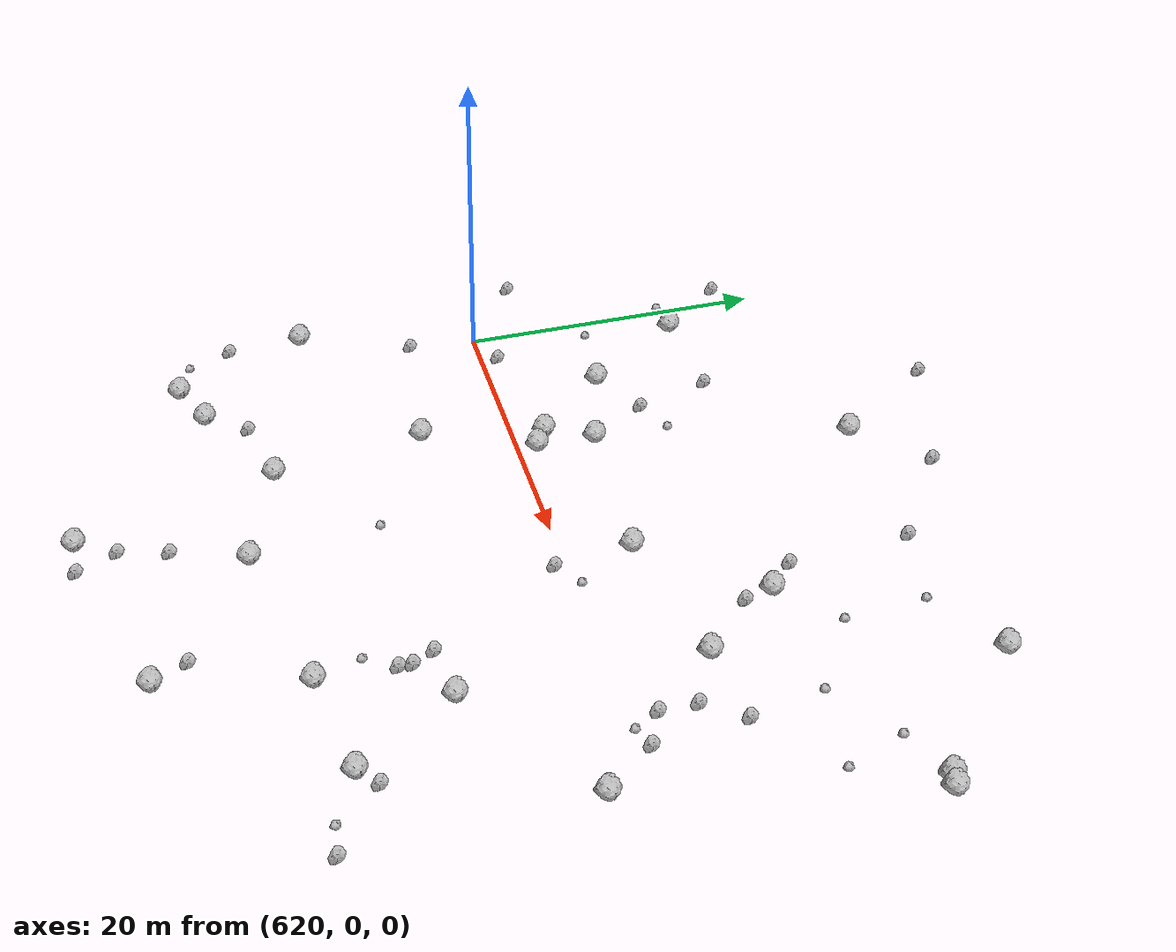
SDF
<sdf version="1.6">
 <world name="default">
  <include><uri>model://sun</uri></include>
  <model name="rock1_16_3">
   <include><uri>model://rock1</uri><pose>648.7977885284811 -16.304048076935768 0.5 0 0 0</pose></include>
  </model>
  <model name="rock1_16_4">
   <include><uri>model://rock1</uri><pose>634.0245774704395 -28.44126855413375 0.5 0 0 0</pose></include>
  </model>
  <model name="rock1_16_5">
   <include><uri>model://rock1</uri><pose>651.9297490989281 -8.83623331983009 0.5 0 0 0</pose></include>
  </model>
  <model name="rock1_16_6">
   <include><uri>model://rock1</uri><pose>616.8478817287121 -11.683502517134457 0.5 0 0 0</pose></include>
  </model>
  <model name="rock1_16_7">
   <include><uri>model://rock1</uri><pose>665.1789782581475 15.262927989470555 0.5 0 0 0</pose></include>
  </model>
  <model name="rock1_16_8">
   <include><uri>model://rock1</uri><pose>664.3654963847845 15.476562945161163 0.5 0 0 0</pose></include>
  </model>
  <model name="rock1_16_9">
   <include><uri>model://rock1</uri><pose>660.7740171255448 -2.6288244894837085 0.5 0 0 0</pose></include>
  </model>
  <model name="rock1_16_10">
   <include><uri>model://rock1</uri><pose>621.9567058497282 13.580944352956685 0.5 0 0 0</pose></include>
  </model>
  <model name="rock1_16_11">
   <include><uri>model://rock1</uri><pose>648.5168491520168 11.262331444725575 0.5 0 0 0</pose></include>
  </model>
  <model name="rock1_16_12">
   <include><uri>model://rock1</uri><pose>629.1515008426804 -5.7719982684937605 0.5 0 0 0</pose></include>
  </model>
  <model name="rock1_16_13">
   <include><uri>model://rock1</uri><pose>623.911970781257 -19.160762997768806 0.5 0 0 0</pose></include>
  </model>
  <model name="rock1_16_14">
   <include><uri>model://rock1</uri><pose>632.1359284256563 1.2838972535400117 0.5 0 0 0</pose></include>
  </model>
  <model name="rock1_16_15">
   <include><uri>model://rock1</uri><pose>642.7736371443791 4.3529675753830475 0.5 0 0 0</pose></include>
  </model>
  <model name="rock1_16_16">
   <include><uri>model://rock1</uri><pose>626.4040695106429 6.9647697803137945 0.5 0 0 0</pose></include>
  </model>
  <model name="rock1_16_17">
   <include><uri>model://rock1</uri><pose>646.7795435126451 -25.195657612370134 0.5 0 0 0</pose></include>
  </model>
  <model name="rock1_16_18">
   <include><uri>model://rock1</uri><pose>630.5563072186261 -15.63939176497044 0.5 0 0 0</pose></include>
  </model>
  <model name="rock1_16_19">
   <include><uri>model://rock1</uri><pose>655.8576901443535 -15.274157736394363 0.5 0 0 0</pose></include>
  </model>
  <model name="rock1_16_20">
   <include><uri>model://rock1</uri><pose>652.4275473653698 6.016323273748924 0.5 0 0 0</pose></include>
  </model>
  <model name="rock1_16_21">
   <include><uri>model://rock1</uri><pose>635.8530834223715 21.36677680666272 0.5 0 0 0</pose></include>
  </model>
  <model name="rock1_16_22">
   <include><uri>model://rock1</uri><pose>637.9257566259163 -18.30477746769039 0.5 0 0 0</pose></include>
  </model>
  <model name="rock1_16_23">
   <include><uri>model://rock1</uri><pose>630.7810016690912 2.0967614799041385 0.5 0 0 0</pose></include>
  </model>
  <model name="rock1_16_24">
   <include><uri>model://rock1</uri><pose>620.7088279653157 -20.440058002493693 0.5 0 0 0</pose></include>
  </model>
  <model name="rock1_16_25">
   <include><uri>model://rock1</uri><pose>656.4588219693493 22.58878088569284 0.5 0 0 0</pose></include>
  </model>
  <model name="rock1_16_26">
   <include><uri>model://rock1</uri><pose>632.2556648212098 5.114202013255756 0.5 0 0 0</pose></include>
  </model>
  <model name="rock2_16_0">
   <include><uri>model://rock2</uri><pose>656.0720969404116 4.057265854297555 0.3 0 0 0</pose></include>
  </model>
  <model name="rock2_16_1">
   <include><uri>model://rock2</uri><pose>648.356934729095 -9.262647765148845 0.3 0 0 0</pose></include>
  </model>
  <model name="rock2_16_2">
   <include><uri>model://rock2</uri><pose>618.6189553842365 17.900550708446488 0.3 0 0 0</pose></include>
  </model>
  <model name="rock2_16_3">
   <include><uri>model://rock2</uri><pose>649.0701807067489 -10.649389104341473 0.3 0 0 0</pose></include>
  </model>
  <model name="rock2_16_4">
   <include><uri>model://rock2</uri><pose>658.2905433529979 0.5945132934361759 0.3 0 0 0</pose></include>
  </model>
  <model name="rock2_16_5">
   <include><uri>model://rock2</uri><pose>636.2969719148564 -22.91950052488819 0.3 0 0 0</pose></include>
  </model>
  <model name="rock2_16_6">
   <include><uri>model://rock2</uri><pose>646.2757107370988 20.9471652727852 0.3 0 0 0</pose></include>
  </model>
  <model name="rock2_16_7">
   <include><uri>model://rock2</uri><pose>646.8012258433002 12.992638557897592 0.3 0 0 0</pose></include>
  </model>
  <model name="rock2_16_8">
   <include><uri>model://rock2</uri><pose>645.6632704388713 -22.951265991358657 0.3 0 0 0</pose></include>
  </model>
  <model name="rock2_16_9">
   <include><uri>model://rock2</uri><pose>625.8327734664783 -16.602445199550814 0.3 0 0 0</pose></include>
  </model>
  <model name="rock2_16_10">
   <include><uri>model://rock2</uri><pose>619.7479977548423 -4.467508706710262 0.3 0 0 0</pose></include>
  </model>
  <model name="rock2_16_11">
   <include><uri>model://rock2</uri><pose>661.2163328391586 -17.227520158379516 0.3 0 0 0</pose></include>
  </model>
  <model name="rock2_16_12">
   <include><uri>model://rock2</uri><pose>657.7935485345989 6.45372923540657 0.3 0 0 0</pose></include>
  </model>
  <model name="rock2_16_13">
   <include><uri>model://rock2</uri><pose>617.1673079018748 -16.61425969783783 0.3 0 0 0</pose></include>
  </model>
  <model name="rock2_16_14">
   <include><uri>model://rock2</uri><pose>656.0541865683227 1.6892333790592637 0.3 0 0 0</pose></include>
  </model>
  <model name="rock2_16_15">
   <include><uri>model://rock2</uri><pose>657.100918796068 -14.165673758497473 0.3 0 0 0</pose></include>
  </model>
  <model name="rock2_16_16">
   <include><uri>model://rock2</uri><pose>628.7212361075412 13.811604772812288 0.3 0 0 0</pose></include>
  </model>
  <model name="rock2_16_17">
   <include><uri>model://rock2</uri><pose>640.0387358390844 25.390984111722183 0.3 0 0 0</pose></include>
  </model>
  <model name="rock2_16_18">
   <include><uri>model://rock2</uri><pose>649.0496438736868 9.371800821492343 0.3 0 0 0</pose></include>
  </model>
  <model name="rock2_16_19">
   <include><uri>model://rock2</uri><pose>649.0515658593865 -11.488984435737947 0.3 0 0 0</pose></include>
  </model>
  <model name="rock2_16_20">
   <include><uri>model://rock2</uri><pose>631.2617135568836 28.34542223740887 0.3 0 0 0</pose></include>
  </model>
  <model name="rock2_16_21">
   <include><uri>model://rock2</uri><pose>630.083608144252 8.901113746117538 0.3 0 0 0</pose></include>
  </model>
  <model name="rock2_16_22">
   <include><uri>model://rock2</uri><pose>636.5954097160517 -28.535905095153865 0.3 0 0 0</pose></include>
  </model>
  <model name="rock2_16_23">
   <include><uri>model://rock2</uri><pose>643.3907955570528 -0.7090988294911789 0.3 0 0 0</pose></include>
  </model>
  <model name="rock2_16_24">
   <include><uri>model://rock2</uri><pose>635.4516080281605 -25.9764612476423 0.3 0 0 0</pose></include>
  </model>
  <model name="rock2_16_25">
   <include><uri>model://rock2</uri><pose>622.5201159565039 1.0494449460995554 0.3 0 0 0</pose></include>
  </model>
  <model name="rock2_16_26">
   <include><uri>model://rock2</uri><pose>614.8243756132446 3.7048447404349574 0.3 0 0 0</pose></include>
  </model>
  <model name="rock3_16_0">
   <include><uri>model://rock3</uri><pose>632.4279902823066 10.028408831716682 0.2 0 0 0</pose></include>
  </model>
  <model name="rock3_16_1">
   <include><uri>model://rock3</uri><pose>619.5762405756727 13.432338950163896 0.2 0 0 0</pose></include>
  </model>
  <model name="rock3_16_2">
   <include><uri>model://rock3</uri><pose>651.5466969975945 19.76569174810988 0.2 0 0 0</pose></include>
  </model>
  <model name="rock3_16_3">
   <include><uri>model://rock3</uri><pose>659.1589926112421 -16.9554800500016 0.2 0 0 0</pose></include>
  </model>
  <model name="rock3_16_4">
   <include><uri>model://rock3</uri><pose>656.8689999130783 0.0969969438833509 0.2 0 0 0</pose></include>
  </model>
  <model name="rock3_16_5">
   <include><uri>model://rock3</uri><pose>637.0412726631383 -10.073505376922313 0.2 0 0 0</pose></include>
  </model>
  <model name="rock3_16_6">
   <include><uri>model://rock3</uri><pose>647.828165782799 -13.33520868756159 0.2 0 0 0</pose></include>
  </model>
  <model name="rock3_16_7">
   <include><uri>model://rock3</uri><pose>651.9054252980608 14.448286243293452 0.2 0 0 0</pose></include>
  </model>
  <model name="rock3_16_8">
   <include><uri>model://rock3</uri><pose>662.3883598670976 10.349536064875409 0.2 0 0 0</pose></include>
  </model>
  <model name="rock3_16_9">
   <include><uri>model://rock3</uri><pose>621.4730743238368 7.609142437227298 0.2 0 0 0</pose></include>
  </model>
  <model name="rock3_16_10">
   <include><uri>model://rock3</uri><pose>645.0748331310023 0.5114544374384238 0.2 0 0 0</pose></include>
  </model>
  <model name="rock3_16_11">
   <include><uri>model://rock3</uri><pose>660.9651435392652 14.147920937904914 0.2 0 0 0</pose></include>
  </model>
  <model name="rock3_16_12">
   <include><uri>model://rock3</uri><pose>618.2103948592036 -19.478311633194302 0.2 0 0 0</pose></include>
  </model>
  <model name="rock3_16_13">
   <include><uri>model://rock3</uri><pose>656.7785156838589 11.251717432230407 0.2 0 0 0</pose></include>
  </model>
 </world>
</sdf>
